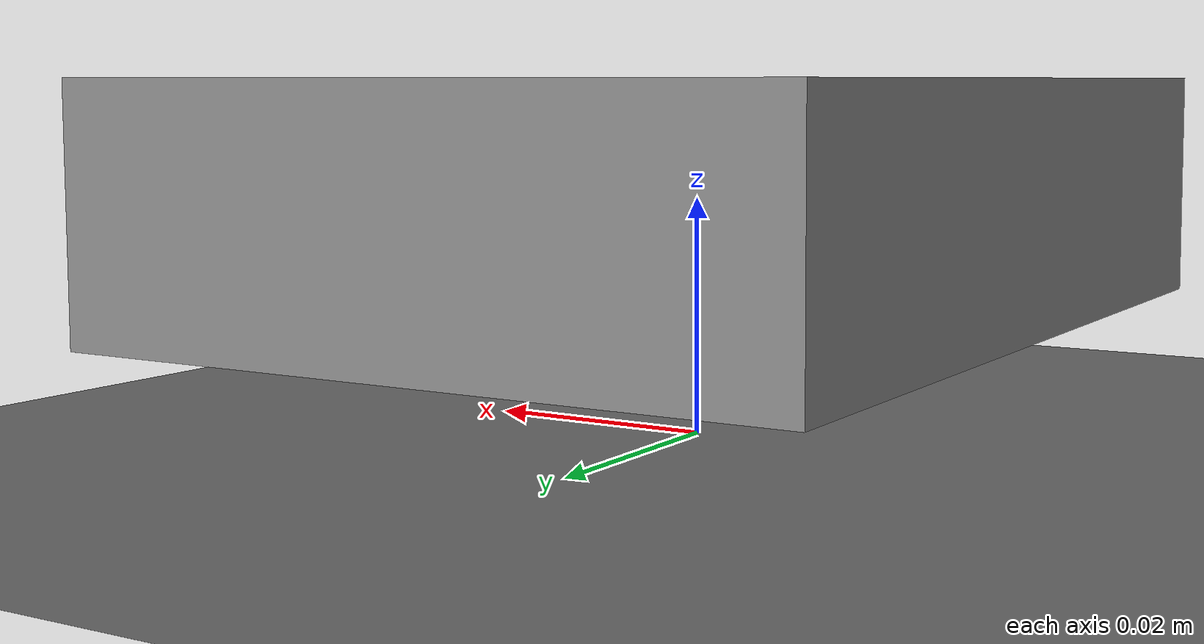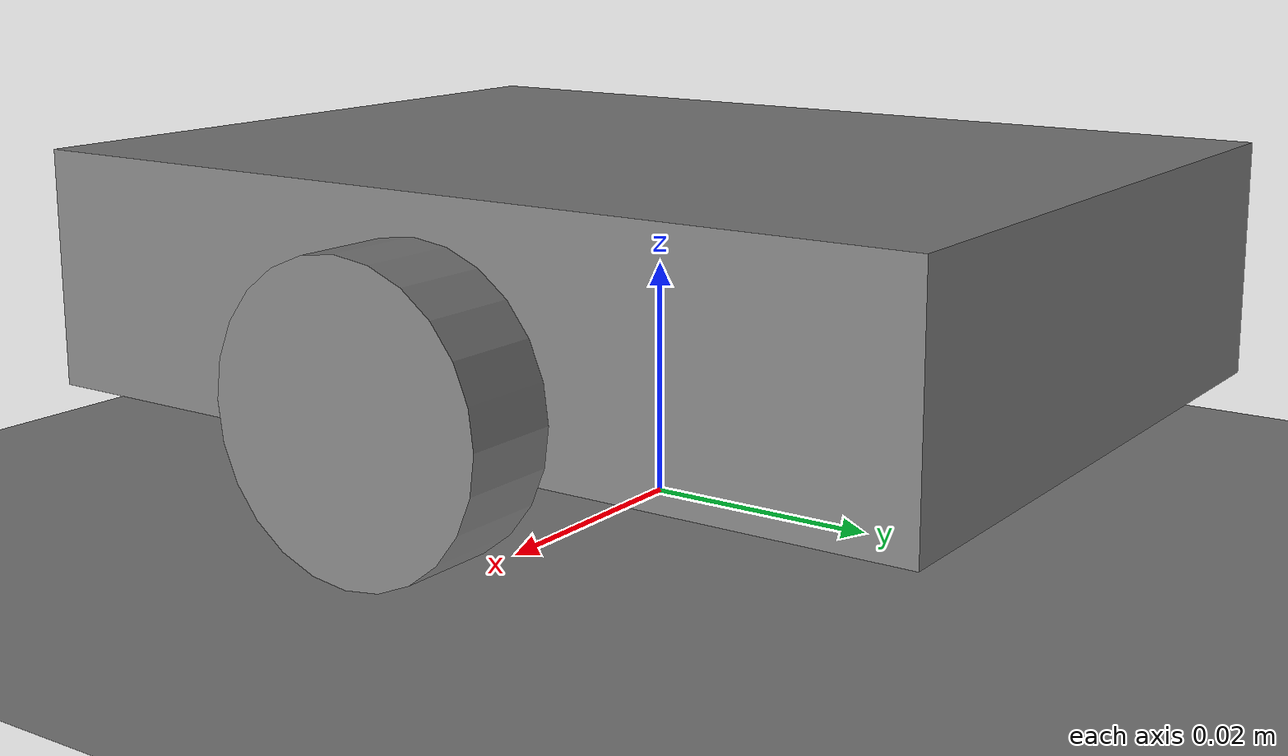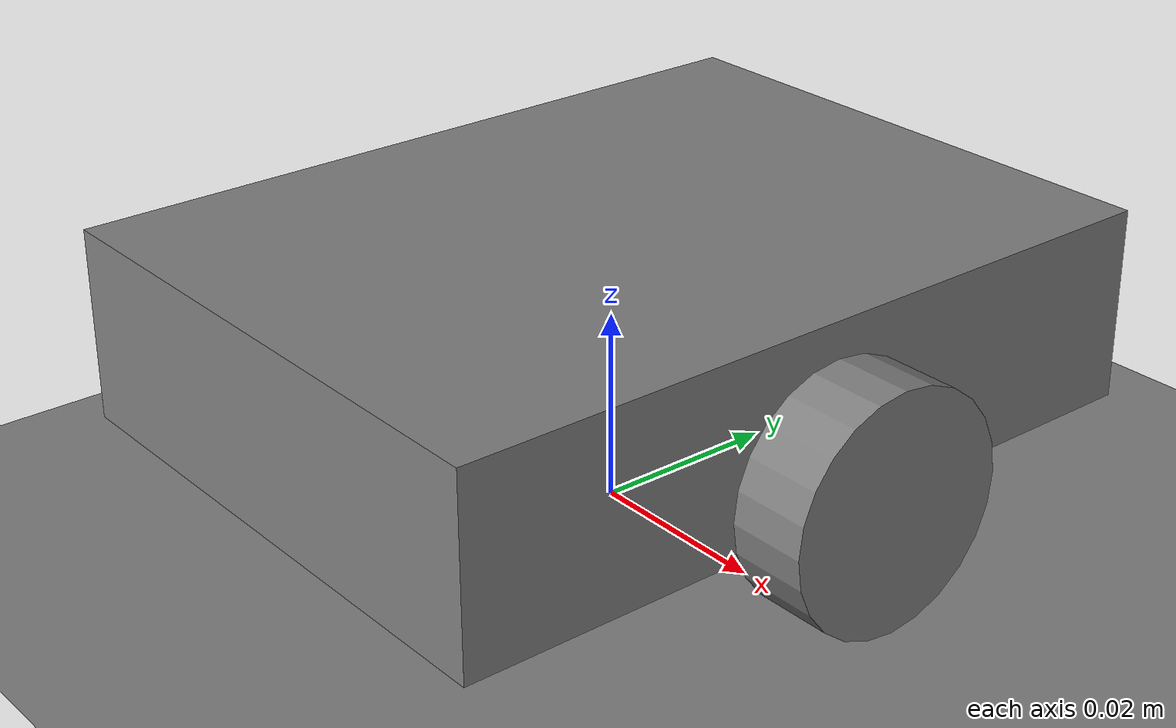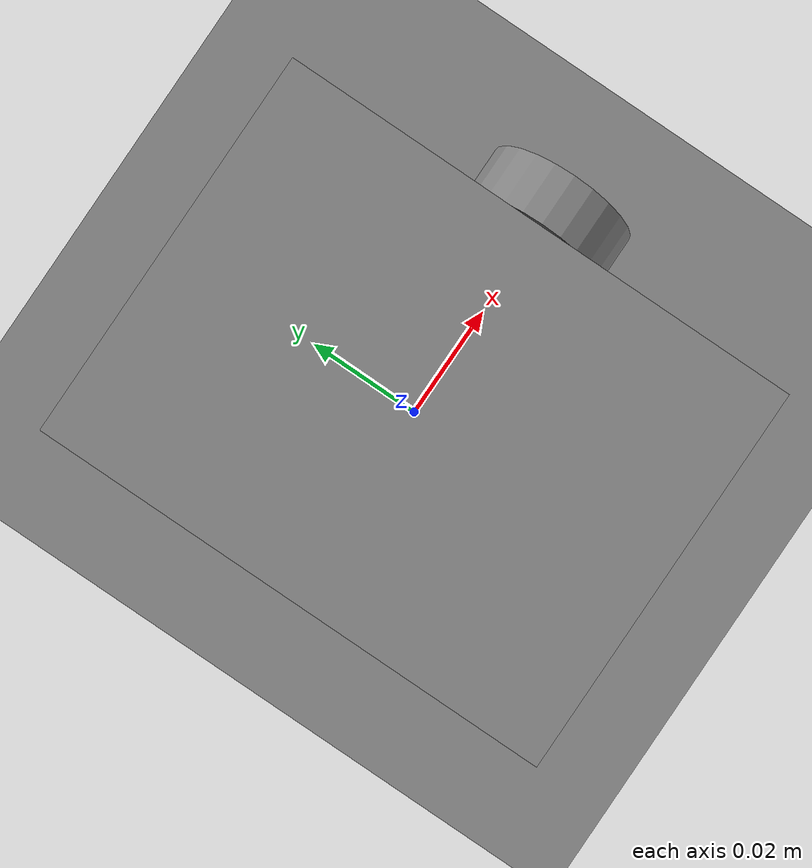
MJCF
<!--
  The smallest robot the engine tests need: a box on a free joint, one driven wheel
  and a plane to stand on. The timestep divides a 1042 us loop into two steps.
-->
<mujoco model="tiny robot">
  <option timestep="0.000521"/>

  <worldbody>
    <geom name="floor" type="plane" size="1 1 0.1"/>

    <body name="robot" pos="0 0 0.02">
      <freejoint/>
      <geom name="chassis" type="box" size="0.03 0.04 0.01" mass="0.1"/>

      <body name="wheel" pos="0.035 0 -0.005" zaxis="1 0 0">
        <joint name="wheel" type="hinge"/>
        <geom name="wheel" type="cylinder" size="0.012 0.004" mass="0.005"/>
      </body>
    </body>
  </worldbody>

  <actuator>
    <motor name="motor" joint="wheel" gear="0.001"/>
  </actuator>
</mujoco>
